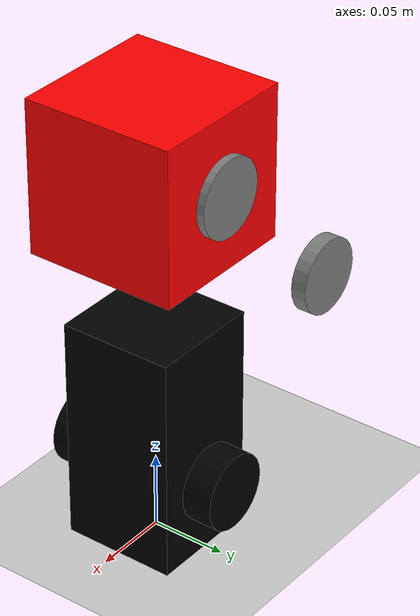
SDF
<?xml version="1.0" ?>
<sdf version="1.11">
  <world name="ground">
    <plugin
      filename="gz-sim-physics-system"
      name="gz::sim::systems::Physics">
    </plugin>
    <plugin
      filename="gz-sim-user-commands-system"
      name="gz::sim::systems::UserCommands">
    </plugin>
    <plugin
      filename="gz-sim-scene-broadcaster-system"
      name="gz::sim::systems::SceneBroadcaster">
    </plugin>
    <plugin
      filename="gz-sim-imu-system"
      name="gz::sim::systems::Imu">
    </plugin>

    <physics name="1ms" type="ode">
        <max_step_size>0.001</max_step_size>
        <real_time_factor>1.0</real_time_factor>
    </physics>

    <light type="directional" name="sun">
      <cast_shadows>true</cast_shadows>
      <pose>0 0 10 0 0 0</pose>
      <diffuse>0.8 0.8 0.8 1</diffuse>
      <specular>0.2 0.2 0.2 1</specular>
      <attenuation>
        <range>1000</range>
        <constant>0.9</constant>
        <linear>0.01</linear>
        <quadratic>0.001</quadratic>
      </attenuation>
      <direction>-0.5 0.1 -0.9</direction>
    </light>

    <model name="ground_plane">
      <static>true</static>
      <link name="link">
        <collision name="collision">
          <geometry>
            <plane>
              <normal>0 0 1</normal>
              <size>100 100</size>
            </plane>
          </geometry>
        </collision>
        <visual name="visual">
          <geometry>
            <plane>
              <normal>0 0 1</normal>
              <size>100 100</size>
            </plane>
          </geometry>
          <material>
            <ambient>0.8 0.8 0.8 1</ambient>
            <diffuse>0.8 0.8 0.8 1</diffuse>
            <specular>0.8 0.8 0.8 1</specular>
          </material>
        </visual>
      </link>
    </model>

    <model name="robot">
      <pose>0 0 0.25 0 0 0</pose>
      <link name="base_link">
        <inertial>
          <mass>0.250</mass>
        </inertial>
        <collision name="collision">
          <geometry>
            <box>
              <size>0.1 0.1 0.1</size>
            </box>
          </geometry>
        </collision>
        <visual name="visual">
          <geometry>
            <box>
              <size>0.1 0.1 0.1</size>
            </box>
          </geometry>
          <material>
            <ambient>1.0 0.0 0.0 1</ambient>
            <diffuse>1.0 0.0 0.0 1</diffuse>
            <specular>1.0 0.0 0.0 1</specular>
          </material>
        </visual>
      </link>

      <link name="imu_link">
        <pose relative_to="base_link">0 0 0 0 0 0</pose>
        <sensor name='imu_gnss' type='imu'>
          <topic>/imu</topic>
          <update_rate>200</update_rate>
          <always_on>true</always_on>
          <visualize>true</visualize>
        </sensor>
      </link>

      <joint name="imu_link_joint" type="fixed">
        <child>imu_link</child>
        <parent>base_link</parent>
      </joint>

      <link name="upper_left_leg_link">
        <pose relative_to="base_link">0 0.05 0 1.57 0 0</pose>
        <inertial>
          <mass>0.100</mass>
        </inertial>
        <visual name="visual">
          <geometry>
            <cylinder>
              <radius>0.025</radius>
              <length>0.01</length>
            </cylinder>
          </geometry>
          <material>
            <ambient>0.5 0.5 0.5 1</ambient>
            <diffuse>0.5 0.5 0.5 1</diffuse>
            <specular>0.5 0.5 0.5 1</specular>
          </material>
        </visual>
        <collision name='collision'>
          <geometry>
            <cylinder>
              <radius>0.025</radius>
              <length>0.01</length>
            </cylinder>
          </geometry>
        </collision>
      </link>

      <joint name="upper_left_leg_joint" type="revolute">
        <axis>
          <xyz>0 0 1</xyz>
          <limit>
            <lower>0</lower>
            <upper>1.57</upper>
          </limit>
          <dynamics>
            <damping>0.5</damping>
          </dynamics>
        </axis>
        <child>upper_left_leg_link</child>
        <parent>base_link</parent>
      </joint>

      <link name="lower_left_leg_link">
        <pose relative_to="upper_left_leg_link">-0.1 -0.1 0 0 0 0</pose>
        <inertial>
          <mass>0.100</mass>
        </inertial>
        <visual name="visual">
          <geometry>
            <cylinder>
              <radius>0.025</radius>
              <length>0.01</length>
            </cylinder>
          </geometry>
          <material>
            <ambient>0.5 0.5 0.5 1</ambient>
            <diffuse>0.5 0.5 0.5 1</diffuse>
            <specular>0.5 0.5 0.5 1</specular>
          </material>
        </visual>
        <collision name='collision'>
          <geometry>
            <cylinder>
              <radius>0.025</radius>
              <length>0.01</length>
            </cylinder>
          </geometry>
        </collision>
      </link>

      <joint name="lower_left_leg_joint" type="revolute">
        <axis>
          <xyz>0 0 1</xyz>
          <limit>
            <lower>0</lower>
            <upper>3.14</upper>
          </limit>
          <dynamics>
            <damping>0.5</damping>
          </dynamics>
        </axis>
        <child>lower_left_leg_link</child>
        <parent>upper_left_leg_link</parent>
      </joint>

      <link name="left_wheel_link">
        <pose relative_to="lower_left_leg_link">0.1 -0.1 0 0 0 0</pose>
        <inertial>
          <mass>0.100</mass>
        </inertial>
        <visual name="visual">
          <geometry>
            <cylinder>
              <radius>0.025</radius>
              <length>0.02</length>
            </cylinder>
          </geometry>
          <material>
            <ambient>0.0 0.0 0.0 1</ambient>
            <diffuse>0.0 0.0 0.0 1</diffuse>
            <specular>0.0 0.0 0.0 1</specular>
          </material>
        </visual>
        <collision name='collision'>
          <geometry>
            <cylinder>
              <radius>0.025</radius>
              <length>0.02</length>
            </cylinder>
          </geometry>
        </collision>
      </link>

      <joint name="left_wheel_joint" type="revolute">
        <axis>
          <xyz>0 0 1</xyz>
        </axis>
        <child>left_wheel_link</child>
        <parent>lower_left_leg_link</parent>
      </joint>

      <link name="upper_right_leg_link">
        <pose relative_to="base_link">0 -0.05 0 1.57 0 0</pose>
        <visual name="visual">
          <geometry>
            <cylinder>
              <radius>0.025</radius>
              <length>0.01</length>
            </cylinder>
          </geometry>
          <material>
            <ambient>0.5 0.5 0.5 1</ambient>
            <diffuse>0.5 0.5 0.5 1</diffuse>
            <specular>0.5 0.5 0.5 1</specular>
          </material>
        </visual>
        <collision name='collision'>
          <geometry>
            <cylinder>
              <radius>0.025</radius>
              <length>0.01</length>
            </cylinder>
          </geometry>
        </collision>
      </link>

      <joint name="upper_right_leg_joint" type="revolute">
        <axis>
          <xyz>0 0 1</xyz>
          <limit>
            <lower>0</lower>
            <upper>1.57</upper>
          </limit>
          <dynamics>
            <damping>0.5</damping>
          </dynamics>
        </axis>
        <child>upper_right_leg_link</child>
        <parent>base_link</parent>
      </joint>

      <link name="lower_right_leg_link">
        <pose relative_to="upper_right_leg_link">-0.1 -0.1 0 0 0 0</pose>
        <visual name="visual">
          <geometry>
            <cylinder>
              <radius>0.025</radius>
              <length>0.01</length>
            </cylinder>
          </geometry>
          <material>
            <ambient>0.5 0.5 0.5 1</ambient>
            <diffuse>0.5 0.5 0.5 1</diffuse>
            <specular>0.5 0.5 0.5 1</specular>
          </material>
        </visual>
        <collision name='collision'>
          <geometry>
            <cylinder>
              <radius>0.025</radius>
              <length>0.01</length>
            </cylinder>
          </geometry>
        </collision>
      </link>

      <joint name="lower_right_leg_joint" type="revolute">
        <axis>
          <xyz>0 0 1</xyz>
          <limit>
            <lower>0</lower>
            <upper>3.14</upper>
          </limit>
          <dynamics>
            <damping>0.5</damping>
          </dynamics>
        </axis>
        <child>lower_right_leg_link</child>
        <parent>upper_right_leg_link</parent>
      </joint>

      <link name="right_wheel_link">
        <pose relative_to="lower_right_leg_link">0.1 -0.1 0 0 0 0</pose>
        <inertial>
          <mass>0.100</mass>
          <inertia>
            <ixx>0.043333</ixx>
            <iyy>0.043333</iyy>
            <izz>0.08</izz>
          </inertia>
        </inertial>
        <visual name="visual">
          <geometry>
            <cylinder>
              <radius>0.025</radius>
              <length>0.02</length>
            </cylinder>
          </geometry>
          <material>
            <ambient>0.0 0.0 0.0 1</ambient>
            <diffuse>0.0 0.0 0.0 1</diffuse>
            <specular>0.0 0.0 0.0 1</specular>
          </material>
        </visual>
        <collision name='collision'>
          <geometry>
            <cylinder>
              <radius>0.025</radius>
              <length>0.02</length>
            </cylinder>
          </geometry>
        </collision>
      </link>

      <joint name="right_wheel_joint" type="revolute">
        <axis>
          <xyz>0 0 1</xyz>
        </axis>
        <child>right_wheel_link</child>
        <parent>lower_right_leg_link</parent>
      </joint>

      <plugin
        filename="ignition-gazebo-pose-publisher-system"
        name="ignition::gazebo::systems::PosePublisher">
        <publish_link_pose>true</publish_link_pose>
        <publish_sensor_pose>true</publish_sensor_pose>
        <publish_model_pose>true</publish_model_pose>
        <publish_nested_model_pose>true</publish_nested_model_pose>

        <use_pose_vector_msg>true</use_pose_vector_msg>
      </plugin>
    </model>

    <model name="holder">
      <pose>0 0 0.075 0 0 0</pose>
      <link name="base_link">
        <inertial>
          <mass>1.0</mass>
          <inertia>
            <ixx>0.095329</ixx>
            <iyy>0.381317</iyy>
            <izz>0.476646</izz>
          </inertia>
        </inertial>
        <collision name="collision">
          <geometry>
            <box>
              <size>0.075 0.075 0.15</size>
            </box>
          </geometry>
        </collision>
        <visual name="visual">
          <geometry>
            <box>
              <size>0.075 0.075 0.15</size>
            </box>
          </geometry>
          <material>
            <ambient>0.0 0.0 0.0 1</ambient>
            <diffuse>0.0 0.0 0.0 1</diffuse>
            <specular>0.0 0.0 0.0 1</specular>
          </material>
        </visual>
      </link>
    </model>
  </world>
</sdf>
